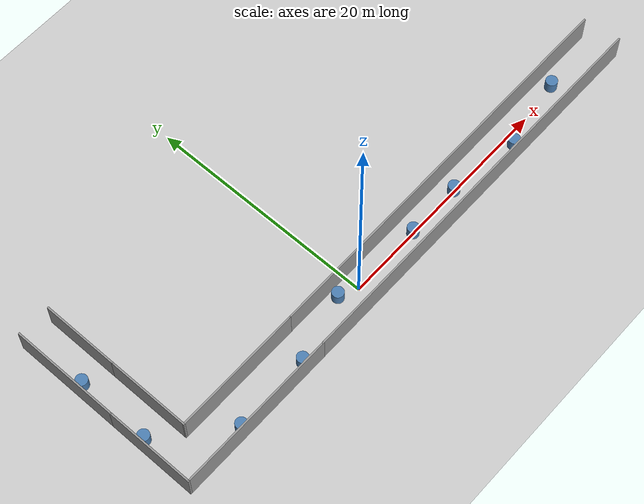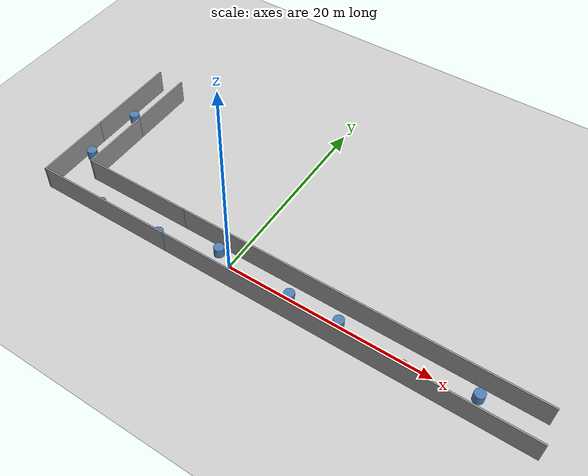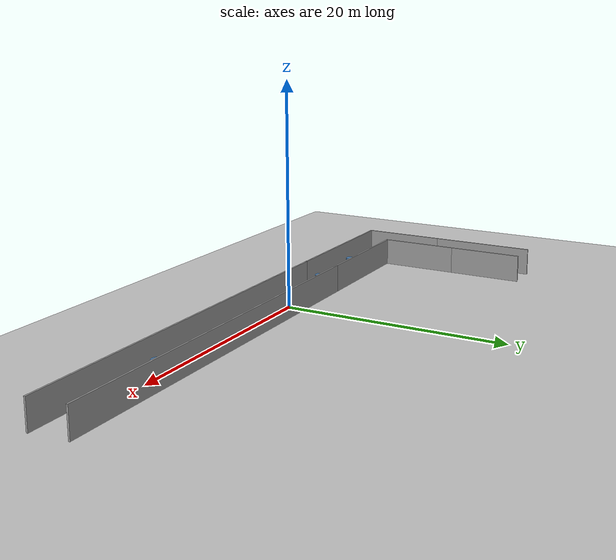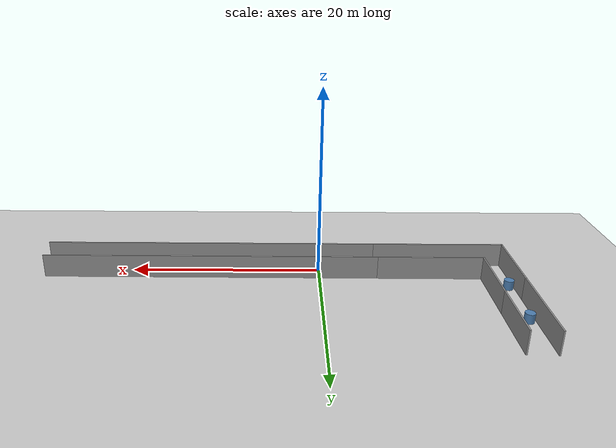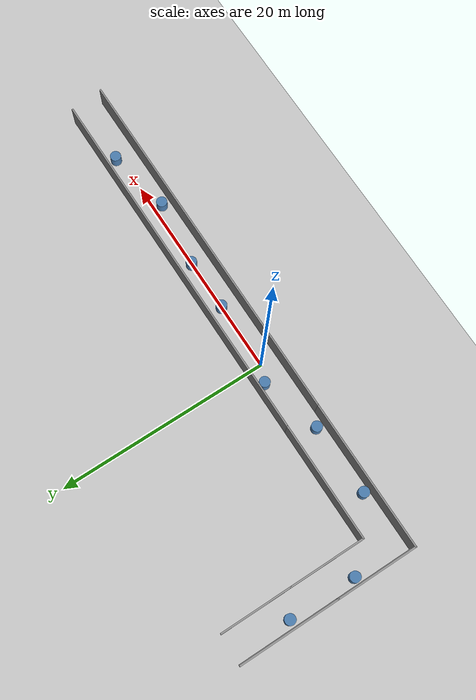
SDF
<sdf version="1.7">
 <world name="default">
  <light name="sun" type="directional">
   <pose>0 0 10 0 -0 0</pose>
   <diffuse>0.8 0.8 0.8 1</diffuse>
   <specular>0.2 0.2 0.2 1</specular>
   <attenuation>
    <range>1000</range>
    <constant>0.9</constant>
    <linear>0.01</linear>
    <quadratic>0.001</quadratic>
   </attenuation>
   <direction>-0.5 0.1 -0.9</direction>
   <spot><inner_angle>0</inner_angle><outer_angle>0</outer_angle><falloff>0</falloff></spot>
  </light>
  <model name="ground_plane">
   <static>1</static>
   <link name="link">
    <collision name="collision">
     <geometry><plane><normal>0 0 1</normal><size>100 100</size></plane></geometry>
     <surface>
      <contact><collide_bitmask>65535</collide_bitmask></contact>
      <friction><ode><mu>100</mu><mu2>50</mu2></ode></friction>
     </surface>
    </collision>
    <visual name="visual">
     <cast_shadows>0</cast_shadows>
     <geometry><plane><normal>0 0 1</normal><size>100 100</size></plane></geometry>
     <material>
      <script><uri>file://media/materials/scripts/gazebo.material</uri><name>Gazebo/Grey</name></script>
     </material>
    </visual>
   </link>
  </model>
  <gravity>0 0 -9.8</gravity>
  <magnetic_field>6e-06 2.3e-05 -4.2e-05</magnetic_field>
  <atmosphere type="adiabatic"/>
  <physics type="ode">
   <max_step_size>0.001</max_step_size>
   <real_time_factor>1</real_time_factor>
   <real_time_update_rate>1000</real_time_update_rate>
  </physics>
  <scene><ambient>0.4 0.4 0.4 1</ambient><background>0.7 0.7 0.7 1</background><shadows>1</shadows></scene>
  <audio><device>default</device></audio>
  <spherical_coordinates>
   <surface_model>EARTH_WGS84</surface_model>
   <latitude_deg>0</latitude_deg>
   <longitude_deg>0</longitude_deg>
   <elevation>0</elevation>
   <heading_deg>0</heading_deg>
  </spherical_coordinates>
  <model name="world2">
   <pose>4.7262 6.81622 0 0 -0 0</pose>
   <link name="Wall_12">
    <collision name="Wall_12_Collision">
     <geometry><box><size>7.75 0.15 2.5</size></box></geometry>
     <pose>0 0 1.25 0 -0 0</pose>
    </collision>
    <visual name="Wall_12_Visual">
     <pose>0 0 1.25 0 -0 0</pose>
     <geometry><box><size>7.75 0.15 2.5</size></box></geometry>
     <material>
      <script><uri>file://media/materials/scripts/gazebo.material</uri><name>Gazebo/Grey</name></script>
      <ambient>1 1 1 1</ambient>
     </material>
     <meta><layer>0</layer></meta>
    </visual>
    <pose>-24.6986 -4.675 0 0 -0 1.5708</pose>
   </link>
   <link name="Wall_14">
    <collision name="Wall_14_Collision">
     <geometry><box><size>11.25 0.15 2.5</size></box></geometry>
     <pose>0 0 1.25 0 -0 0</pose>
    </collision>
    <visual name="Wall_14_Visual">
     <pose>0 0 1.25 0 -0 0</pose>
     <geometry><box><size>11.25 0.15 2.5</size></box></geometry>
     <material>
      <script><uri>file://media/materials/scripts/gazebo.material</uri><name>Gazebo/Grey</name></script>
      <ambient>1 1 1 1</ambient>
     </material>
     <meta><layer>0</layer></meta>
    </visual>
    <pose>-16.3037 -5.29947 0 0 -0 3.14159</pose>
   </link>
   <link name="Wall_16">
    <collision name="Wall_16_Collision">
     <geometry><box><size>7.25 0.15 2.5</size></box></geometry>
     <pose>0 0 1.25 0 -0 0</pose>
    </collision>
    <visual name="Wall_16_Visual">
     <pose>0 0 1.25 0 -0 0</pose>
     <geometry><box><size>7.25 0.15 2.5</size></box></geometry>
     <material>
      <script><uri>file://media/materials/scripts/gazebo.material</uri><name>Gazebo/Grey</name></script>
      <ambient>1 1 1 1</ambient>
     </material>
     <meta><layer>0</layer></meta>
    </visual>
    <pose>-21.8537 -1.74947 0 0 -0 1.5708</pose>
   </link>
   <link name="Wall_18">
    <collision name="Wall_18_Collision">
     <geometry><box><size>9.5 0.15 2.5</size></box></geometry>
     <pose>0 0 1.25 0 -0 0</pose>
    </collision>
    <visual name="Wall_18_Visual">
     <pose>0 0 1.25 0 -0 0</pose>
     <geometry><box><size>9.5 0.15 2.5</size></box></geometry>
     <material>
      <script><uri>file://media/materials/scripts/gazebo.material</uri><name>Gazebo/Grey</name></script>
      <ambient>1 1 1 1</ambient>
     </material>
     <meta><layer>0</layer></meta>
    </visual>
    <pose>-24.6986 3.8 0 0 -0 1.5708</pose>
   </link>
   <link name="Wall_20">
    <collision name="Wall_20_Collision">
     <geometry><box><size>6.75 0.15 2.5</size></box></geometry>
     <pose>0 0 1.25 0 -0 0</pose>
    </collision>
    <visual name="Wall_20_Visual">
     <pose>0 0 1.25 0 -0 0</pose>
     <geometry><box><size>6.75 0.15 2.5</size></box></geometry>
     <material>
      <script><uri>file://media/materials/scripts/gazebo.material</uri><name>Gazebo/Grey</name></script>
      <ambient>1 1 1 1</ambient>
     </material>
     <meta><layer>0</layer></meta>
    </visual>
    <pose>-21.8537 5.10053 0 0 -0 1.5708</pose>
   </link>
   <link name="Wall_24">
    <collision name="Wall_24_Collision">
     <geometry><box><size>35.5 0.15 2.5</size></box></geometry>
     <pose>0 0 1.25 0 -0 0</pose>
    </collision>
    <visual name="Wall_24_Visual">
     <pose>0 0 1.25 0 -0 0</pose>
     <geometry><box><size>35.5 0.15 2.5</size></box></geometry>
     <material>
      <script><uri>file://media/materials/scripts/gazebo.material</uri><name>Gazebo/Grey</name></script>
      <ambient>1 1 1 1</ambient>
     </material>
     <meta><layer>0</layer></meta>
    </visual>
    <pose>7.02355 -8.475 0 0 -0 0</pose>
   </link>
   <link name="Wall_27">
    <collision name="Wall_27_Collision">
     <geometry><box><size>35.25 0.15 2.5</size></box></geometry>
     <pose>0 0 1.25 0 -0 0</pose>
    </collision>
    <visual name="Wall_27_Visual">
     <pose>0 0 1.25 0 -0 0</pose>
     <geometry><box><size>35.25 0.15 2.5</size></box></geometry>
     <material>
      <script><uri>file://media/materials/scripts/gazebo.material</uri><name>Gazebo/Grey</name></script>
      <ambient>1 1 1 1</ambient>
     </material>
     <meta><layer>0</layer></meta>
    </visual>
    <pose>6.79625 -5.29947 0 0 -0 0</pose>
   </link>
   <link name="Wall_9">
    <collision name="Wall_9_Collision">
     <geometry><box><size>14.1971 0.15 2.5</size></box></geometry>
     <pose>0 0 1.25 0 -0 0</pose>
    </collision>
    <visual name="Wall_9_Visual">
     <pose>0 0 1.25 0 -0 0</pose>
     <geometry><box><size>14.1971 0.15 2.5</size></box></geometry>
     <material>
      <script><uri>file://media/materials/scripts/gazebo.material</uri><name>Gazebo/Grey</name></script>
      <ambient>1 1 1 1</ambient>
     </material>
     <meta><layer>0</layer></meta>
    </visual>
    <pose>-17.675 -8.475 0 0 -0 3.14159</pose>
   </link>
   <static>1</static>
  </model>
  <model name="unit_cylinder">
   <link name="link">
    <inertial>
     <mass>1</mass>
     <inertia><ixx>0.145833</ixx><ixy>0</ixy><ixz>0</ixz><iyy>0.145833</iyy><iyz>0</iyz><izz>0.125</izz></inertia>
    </inertial>
    <visual name="visual">
     <geometry><cylinder><radius>0.5</radius><length>1</length></cylinder></geometry>
     <material>
      <script><name>Gazebo/Grey</name><uri>file://media/materials/scripts/gazebo.material</uri></script>
      <shader type="pixel"><normal_map>__default__</normal_map></shader>
      <ambient>0.3 0.5 0.7 1</ambient>
      <diffuse>0.7 0.7 0.7 1</diffuse>
      <specular>0.01 0.01 0.01 1</specular>
      <emissive>0 0 0 1</emissive>
     </material>
    </visual>
    <collision name="collision">
     <geometry><cylinder><radius>0.5</radius><length>1</length></cylinder></geometry>
     <surface>
      <friction>
       <ode><mu>1</mu><mu2>1</mu2><fdir1>0 0 0</fdir1><slip1>0</slip1><slip2>0</slip2></ode>
       <torsional>
        <coefficient>1</coefficient>
        <patch_radius>0</patch_radius>
        <surface_radius>0</surface_radius>
        <use_patch_radius>1</use_patch_radius>
        <ode><slip>0</slip></ode>
       </torsional>
      </friction>
      <bounce><restitution_coefficient>0</restitution_coefficient><threshold>1e+06</threshold></bounce>
      <contact>
       <collide_without_contact>0</collide_without_contact>
       <collide_without_contact_bitmask>1</collide_without_contact_bitmask>
       <collide_bitmask>1</collide_bitmask>
       <ode>
        <soft_cfm>0</soft_cfm>
        <soft_erp>0.2</soft_erp>
        <kp>1e+13</kp>
        <kd>1</kd>
        <max_vel>0.01</max_vel>
        <min_depth>0</min_depth>
       </ode>
       <bullet>
        <split_impulse>1</split_impulse>
        <split_impulse_penetration_threshold>-0.01</split_impulse_penetration_threshold>
        <soft_cfm>0</soft_cfm>
        <soft_erp>0.2</soft_erp>
        <kp>1e+13</kp>
        <kd>1</kd>
       </bullet>
      </contact>
     </surface>
    </collision>
   </link>
   <static>0</static>
   <pose>-19.2134 9.945 0.499991 -0 -0 -0</pose>
  </model>
  <model name="unit_cylinder_1">
   <link name="link">
    <inertial>
     <mass>1</mass>
     <inertia><ixx>0.145833</ixx><ixy>0</ixy><ixz>0</ixz><iyy>0.145833</iyy><iyz>0</iyz><izz>0.125</izz></inertia>
    </inertial>
    <visual name="visual">
     <geometry><cylinder><radius>0.5</radius><length>1</length></cylinder></geometry>
     <material>
      <script><name>Gazebo/Grey</name><uri>file://media/materials/scripts/gazebo.material</uri></script>
      <shader type="pixel"><normal_map>__default__</normal_map></shader>
      <ambient>0.3 0.5 0.7 1</ambient>
      <diffuse>0.7 0.7 0.7 1</diffuse>
      <specular>0.01 0.01 0.01 1</specular>
      <emissive>0 0 0 1</emissive>
     </material>
    </visual>
    <collision name="collision">
     <geometry><cylinder><radius>0.5</radius><length>1</length></cylinder></geometry>
     <surface>
      <friction>
       <ode><mu>1</mu><mu2>1</mu2><fdir1>0 0 0</fdir1><slip1>0</slip1><slip2>0</slip2></ode>
       <torsional>
        <coefficient>1</coefficient>
        <patch_radius>0</patch_radius>
        <surface_radius>0</surface_radius>
        <use_patch_radius>1</use_patch_radius>
        <ode><slip>0</slip></ode>
       </torsional>
      </friction>
      <bounce><restitution_coefficient>0</restitution_coefficient><threshold>1e+06</threshold></bounce>
      <contact>
       <collide_without_contact>0</collide_without_contact>
       <collide_without_contact_bitmask>1</collide_without_contact_bitmask>
       <collide_bitmask>1</collide_bitmask>
       <ode>
        <soft_cfm>0</soft_cfm>
        <soft_erp>0.2</soft_erp>
        <kp>1e+13</kp>
        <kd>1</kd>
        <max_vel>0.01</max_vel>
        <min_depth>0</min_depth>
       </ode>
       <bullet>
        <split_impulse>1</split_impulse>
        <split_impulse_penetration_threshold>-0.01</split_impulse_penetration_threshold>
        <soft_cfm>0</soft_cfm>
        <soft_erp>0.2</soft_erp>
        <kp>1e+13</kp>
        <kd>1</kd>
       </bullet>
      </contact>
     </surface>
    </collision>
   </link>
   <static>0</static>
   <pose>-19.2961 3.59476 0.499991 -0 -0 -0</pose>
  </model>
  <model name="unit_cylinder_3">
   <link name="link">
    <inertial>
     <mass>1</mass>
     <inertia><ixx>0.145833</ixx><ixy>0</ixy><ixz>0</ixz><iyy>0.145833</iyy><iyz>0</iyz><izz>0.125</izz></inertia>
    </inertial>
    <visual name="visual">
     <geometry><cylinder><radius>0.5</radius><length>1</length></cylinder></geometry>
     <material>
      <script><name>Gazebo/Grey</name><uri>file://media/materials/scripts/gazebo.material</uri></script>
      <shader type="pixel"><normal_map>__default__</normal_map></shader>
      <ambient>0.3 0.5 0.7 1</ambient>
      <diffuse>0.7 0.7 0.7 1</diffuse>
      <specular>0.01 0.01 0.01 1</specular>
      <emissive>0 0 0 1</emissive>
     </material>
    </visual>
    <collision name="collision">
     <geometry><cylinder><radius>0.5</radius><length>1</length></cylinder></geometry>
     <surface>
      <friction>
       <ode><mu>1</mu><mu2>1</mu2><fdir1>0 0 0</fdir1><slip1>0</slip1><slip2>0</slip2></ode>
       <torsional>
        <coefficient>1</coefficient>
        <patch_radius>0</patch_radius>
        <surface_radius>0</surface_radius>
        <use_patch_radius>1</use_patch_radius>
        <ode><slip>0</slip></ode>
       </torsional>
      </friction>
      <bounce><restitution_coefficient>0</restitution_coefficient><threshold>1e+06</threshold></bounce>
      <contact>
       <collide_without_contact>0</collide_without_contact>
       <collide_without_contact_bitmask>1</collide_without_contact_bitmask>
       <collide_bitmask>1</collide_bitmask>
       <ode>
        <soft_cfm>0</soft_cfm>
        <soft_erp>0.2</soft_erp>
        <kp>1e+13</kp>
        <kd>1</kd>
        <max_vel>0.01</max_vel>
        <min_depth>0</min_depth>
       </ode>
       <bullet>
        <split_impulse>1</split_impulse>
        <split_impulse_penetration_threshold>-0.01</split_impulse_penetration_threshold>
        <soft_cfm>0</soft_cfm>
        <soft_erp>0.2</soft_erp>
        <kp>1e+13</kp>
        <kd>1</kd>
       </bullet>
      </contact>
     </surface>
    </collision>
   </link>
   <static>0</static>
   <pose>-13.9993 -1.01468 0.499991 -0 -0 -0</pose>
  </model>
  <model name="unit_cylinder_5">
   <link name="link">
    <inertial>
     <mass>1</mass>
     <inertia><ixx>0.145833</ixx><ixy>0</ixy><ixz>0</ixz><iyy>0.145833</iyy><iyz>0</iyz><izz>0.125</izz></inertia>
    </inertial>
    <visual name="visual">
     <geometry><cylinder><radius>0.5</radius><length>1</length></cylinder></geometry>
     <material>
      <script><name>Gazebo/Grey</name><uri>file://media/materials/scripts/gazebo.material</uri></script>
      <shader type="pixel"><normal_map>__default__</normal_map></shader>
      <ambient>0.3 0.5 0.7 1</ambient>
      <diffuse>0.7 0.7 0.7 1</diffuse>
      <specular>0.01 0.01 0.01 1</specular>
      <emissive>0 0 0 1</emissive>
     </material>
    </visual>
    <collision name="collision">
     <geometry><cylinder><radius>0.5</radius><length>1</length></cylinder></geometry>
     <surface>
      <friction>
       <ode><mu>1</mu><mu2>1</mu2><fdir1>0 0 0</fdir1><slip1>0</slip1><slip2>0</slip2></ode>
       <torsional>
        <coefficient>1</coefficient>
        <patch_radius>0</patch_radius>
        <surface_radius>0</surface_radius>
        <use_patch_radius>1</use_patch_radius>
        <ode><slip>0</slip></ode>
       </torsional>
      </friction>
      <bounce><restitution_coefficient>0</restitution_coefficient><threshold>1e+06</threshold></bounce>
      <contact>
       <collide_without_contact>0</collide_without_contact>
       <collide_without_contact_bitmask>1</collide_without_contact_bitmask>
       <collide_bitmask>1</collide_bitmask>
       <ode>
        <soft_cfm>0</soft_cfm>
        <soft_erp>0.2</soft_erp>
        <kp>1e+13</kp>
        <kd>1</kd>
        <max_vel>0.01</max_vel>
        <min_depth>0</min_depth>
       </ode>
       <bullet>
        <split_impulse>1</split_impulse>
        <split_impulse_penetration_threshold>-0.01</split_impulse_penetration_threshold>
        <soft_cfm>0</soft_cfm>
        <soft_erp>0.2</soft_erp>
        <kp>1e+13</kp>
        <kd>1</kd>
       </bullet>
      </contact>
     </surface>
    </collision>
   </link>
   <static>0</static>
   <pose>-7.25659 -0.858492 0.499991 -0 -0 -0</pose>
  </model>
  <model name="unit_cylinder_7">
   <link name="link">
    <inertial>
     <mass>1</mass>
     <inertia><ixx>0.145833</ixx><ixy>0</ixy><ixz>0</ixz><iyy>0.145833</iyy><iyz>0</iyz><izz>0.125</izz></inertia>
    </inertial>
    <visual name="visual">
     <geometry><cylinder><radius>0.5</radius><length>1</length></cylinder></geometry>
     <material>
      <script><name>Gazebo/Grey</name><uri>file://media/materials/scripts/gazebo.material</uri></script>
      <shader type="pixel"><normal_map>__default__</normal_map></shader>
      <ambient>0.3 0.5 0.7 1</ambient>
      <diffuse>0.7 0.7 0.7 1</diffuse>
      <specular>0.01 0.01 0.01 1</specular>
      <emissive>0 0 0 1</emissive>
     </material>
    </visual>
    <collision name="collision">
     <geometry><cylinder><radius>0.5</radius><length>1</length></cylinder></geometry>
     <surface>
      <friction>
       <ode><mu>1</mu><mu2>1</mu2><fdir1>0 0 0</fdir1><slip1>0</slip1><slip2>0</slip2></ode>
       <torsional>
        <coefficient>1</coefficient>
        <patch_radius>0</patch_radius>
        <surface_radius>0</surface_radius>
        <use_patch_radius>1</use_patch_radius>
        <ode><slip>0</slip></ode>
       </torsional>
      </friction>
      <bounce><restitution_coefficient>0</restitution_coefficient><threshold>1e+06</threshold></bounce>
      <contact>
       <collide_without_contact>0</collide_without_contact>
       <collide_without_contact_bitmask>1</collide_without_contact_bitmask>
       <collide_bitmask>1</collide_bitmask>
       <ode>
        <soft_cfm>0</soft_cfm>
        <soft_erp>0.2</soft_erp>
        <kp>1e+13</kp>
        <kd>1</kd>
        <max_vel>0.01</max_vel>
        <min_depth>0</min_depth>
       </ode>
       <bullet>
        <split_impulse>1</split_impulse>
        <split_impulse_penetration_threshold>-0.01</split_impulse_penetration_threshold>
        <soft_cfm>0</soft_cfm>
        <soft_erp>0.2</soft_erp>
        <kp>1e+13</kp>
        <kd>1</kd>
       </bullet>
      </contact>
     </surface>
    </collision>
   </link>
   <static>0</static>
   <pose>-1.59145 0.714298 0.499991 -0 -0 -0</pose>
  </model>
  <model name="unit_cylinder_10">
   <link name="link">
    <inertial>
     <mass>1</mass>
     <inertia><ixx>0.145833</ixx><ixy>0</ixy><ixz>0</ixz><iyy>0.145833</iyy><iyz>0</iyz><izz>0.125</izz></inertia>
    </inertial>
    <visual name="visual">
     <geometry><cylinder><radius>0.5</radius><length>1</length></cylinder></geometry>
     <material>
      <script><name>Gazebo/Grey</name><uri>file://media/materials/scripts/gazebo.material</uri></script>
      <shader type="pixel"><normal_map>__default__</normal_map></shader>
      <ambient>0.3 0.5 0.7 1</ambient>
      <diffuse>0.7 0.7 0.7 1</diffuse>
      <specular>0.01 0.01 0.01 1</specular>
      <emissive>0 0 0 1</emissive>
     </material>
    </visual>
    <collision name="collision">
     <geometry><cylinder><radius>0.5</radius><length>1</length></cylinder></geometry>
     <surface>
      <friction>
       <ode><mu>1</mu><mu2>1</mu2><fdir1>0 0 0</fdir1><slip1>0</slip1><slip2>0</slip2></ode>
       <torsional>
        <coefficient>1</coefficient>
        <patch_radius>0</patch_radius>
        <surface_radius>0</surface_radius>
        <use_patch_radius>1</use_patch_radius>
        <ode><slip>0</slip></ode>
       </torsional>
      </friction>
      <bounce><restitution_coefficient>0</restitution_coefficient><threshold>1e+06</threshold></bounce>
      <contact>
       <collide_without_contact>0</collide_without_contact>
       <collide_without_contact_bitmask>1</collide_without_contact_bitmask>
       <collide_bitmask>1</collide_bitmask>
       <ode>
        <soft_cfm>0</soft_cfm>
        <soft_erp>0.2</soft_erp>
        <kp>1e+13</kp>
        <kd>1</kd>
        <max_vel>0.01</max_vel>
        <min_depth>0</min_depth>
       </ode>
       <bullet>
        <split_impulse>1</split_impulse>
        <split_impulse_penetration_threshold>-0.01</split_impulse_penetration_threshold>
        <soft_cfm>0</soft_cfm>
        <soft_erp>0.2</soft_erp>
        <kp>1e+13</kp>
        <kd>1</kd>
       </bullet>
      </contact>
     </surface>
    </collision>
   </link>
   <static>0</static>
   <pose>6.29298 0.047764 0.499991 -0 -0 -0</pose>
  </model>
  <model name="unit_cylinder_11">
   <link name="link">
    <inertial>
     <mass>1</mass>
     <inertia><ixx>0.145833</ixx><ixy>0</ixy><ixz>0</ixz><iyy>0.145833</iyy><iyz>0</iyz><izz>0.125</izz></inertia>
    </inertial>
    <visual name="visual">
     <geometry><cylinder><radius>0.5</radius><length>1</length></cylinder></geometry>
     <material>
      <script><name>Gazebo/Grey</name><uri>file://media/materials/scripts/gazebo.material</uri></script>
      <shader type="pixel"><normal_map>__default__</normal_map></shader>
      <ambient>0.3 0.5 0.7 1</ambient>
      <diffuse>0.7 0.7 0.7 1</diffuse>
      <specular>0.01 0.01 0.01 1</specular>
      <emissive>0 0 0 1</emissive>
     </material>
    </visual>
    <collision name="collision">
     <geometry><cylinder><radius>0.5</radius><length>1</length></cylinder></geometry>
     <surface>
      <friction>
       <ode><mu>1</mu><mu2>1</mu2><fdir1>0 0 0</fdir1><slip1>0</slip1><slip2>0</slip2></ode>
       <torsional>
        <coefficient>1</coefficient>
        <patch_radius>0</patch_radius>
        <surface_radius>0</surface_radius>
        <use_patch_radius>1</use_patch_radius>
        <ode><slip>0</slip></ode>
       </torsional>
      </friction>
      <bounce><restitution_coefficient>0</restitution_coefficient><threshold>1e+06</threshold></bounce>
      <contact>
       <collide_without_contact>0</collide_without_contact>
       <collide_without_contact_bitmask>1</collide_without_contact_bitmask>
       <collide_bitmask>1</collide_bitmask>
       <ode>
        <soft_cfm>0</soft_cfm>
        <soft_erp>0.2</soft_erp>
        <kp>1e+13</kp>
        <kd>1</kd>
        <max_vel>0.01</max_vel>
        <min_depth>0</min_depth>
       </ode>
       <bullet>
        <split_impulse>1</split_impulse>
        <split_impulse_penetration_threshold>-0.01</split_impulse_penetration_threshold>
        <soft_cfm>0</soft_cfm>
        <soft_erp>0.2</soft_erp>
        <kp>1e+13</kp>
        <kd>1</kd>
       </bullet>
      </contact>
     </surface>
    </collision>
   </link>
   <static>0</static>
   <pose>11.1858 0.073911 0.499991 -0 -0 -0</pose>
  </model>
  <model name="unit_cylinder_13">
   <link name="link">
    <inertial>
     <mass>1</mass>
     <inertia><ixx>0.145833</ixx><ixy>0</ixy><ixz>0</ixz><iyy>0.145833</iyy><iyz>0</iyz><izz>0.125</izz></inertia>
    </inertial>
    <visual name="visual">
     <geometry><cylinder><radius>0.5</radius><length>1</length></cylinder></geometry>
     <material>
      <script><name>Gazebo/Grey</name><uri>file://media/materials/scripts/gazebo.material</uri></script>
      <shader type="pixel"><normal_map>__default__</normal_map></shader>
      <ambient>0.3 0.5 0.7 1</ambient>
      <diffuse>0.7 0.7 0.7 1</diffuse>
      <specular>0.01 0.01 0.01 1</specular>
      <emissive>0 0 0 1</emissive>
     </material>
    </visual>
    <collision name="collision">
     <geometry><cylinder><radius>0.5</radius><length>1</length></cylinder></geometry>
     <surface>
      <friction>
       <ode><mu>1</mu><mu2>1</mu2><fdir1>0 0 0</fdir1><slip1>0</slip1><slip2>0</slip2></ode>
       <torsional>
        <coefficient>1</coefficient>
        <patch_radius>0</patch_radius>
        <surface_radius>0</surface_radius>
        <use_patch_radius>1</use_patch_radius>
        <ode><slip>0</slip></ode>
       </torsional>
      </friction>
      <bounce><restitution_coefficient>0</restitution_coefficient><threshold>1e+06</threshold></bounce>
      <contact>
       <collide_without_contact>0</collide_without_contact>
       <collide_without_contact_bitmask>1</collide_without_contact_bitmask>
       <collide_bitmask>1</collide_bitmask>
       <ode>
        <soft_cfm>0</soft_cfm>
        <soft_erp>0.2</soft_erp>
        <kp>1e+13</kp>
        <kd>1</kd>
        <max_vel>0.01</max_vel>
        <min_depth>0</min_depth>
       </ode>
       <bullet>
        <split_impulse>1</split_impulse>
        <split_impulse_penetration_threshold>-0.01</split_impulse_penetration_threshold>
        <soft_cfm>0</soft_cfm>
        <soft_erp>0.2</soft_erp>
        <kp>1e+13</kp>
        <kd>1</kd>
       </bullet>
      </contact>
     </surface>
    </collision>
   </link>
   <static>0</static>
   <pose>17.514 -0.768944 0.499991 -0 -0 -0</pose>
  </model>
  <model name="unit_cylinder_15">
   <link name="link">
    <inertial>
     <mass>1</mass>
     <inertia><ixx>0.145833</ixx><ixy>0</ixy><ixz>0</ixz><iyy>0.145833</iyy><iyz>0</iyz><izz>0.125</izz></inertia>
    </inertial>
    <visual name="visual">
     <geometry><cylinder><radius>0.5</radius><length>1</length></cylinder></geometry>
     <material>
      <script><name>Gazebo/Grey</name><uri>file://media/materials/scripts/gazebo.material</uri></script>
      <shader type="pixel"><normal_map>__default__</normal_map></shader>
      <ambient>0.3 0.5 0.7 1</ambient>
      <diffuse>0.7 0.7 0.7 1</diffuse>
      <specular>0.01 0.01 0.01 1</specular>
      <emissive>0 0 0 1</emissive>
     </material>
    </visual>
    <collision name="collision">
     <geometry><cylinder><radius>0.5</radius><length>1</length></cylinder></geometry>
     <surface>
      <friction>
       <ode><mu>1</mu><mu2>1</mu2><fdir1>0 0 0</fdir1><slip1>0</slip1><slip2>0</slip2></ode>
       <torsional>
        <coefficient>1</coefficient>
        <patch_radius>0</patch_radius>
        <surface_radius>0</surface_radius>
        <use_patch_radius>1</use_patch_radius>
        <ode><slip>0</slip></ode>
       </torsional>
      </friction>
      <bounce><restitution_coefficient>0</restitution_coefficient><threshold>1e+06</threshold></bounce>
      <contact>
       <collide_without_contact>0</collide_without_contact>
       <collide_without_contact_bitmask>1</collide_without_contact_bitmask>
       <collide_bitmask>1</collide_bitmask>
       <ode>
        <soft_cfm>0</soft_cfm>
        <soft_erp>0.2</soft_erp>
        <kp>1e+13</kp>
        <kd>1</kd>
        <max_vel>0.01</max_vel>
        <min_depth>0</min_depth>
       </ode>
       <bullet>
        <split_impulse>1</split_impulse>
        <split_impulse_penetration_threshold>-0.01</split_impulse_penetration_threshold>
        <soft_cfm>0</soft_cfm>
        <soft_erp>0.2</soft_erp>
        <kp>1e+13</kp>
        <kd>1</kd>
       </bullet>
      </contact>
     </surface>
    </collision>
   </link>
   <static>0</static>
   <pose>23.6815 0.375641 0.499991 -0 -0 -0</pose>
  </model>
 </world>
</sdf>
